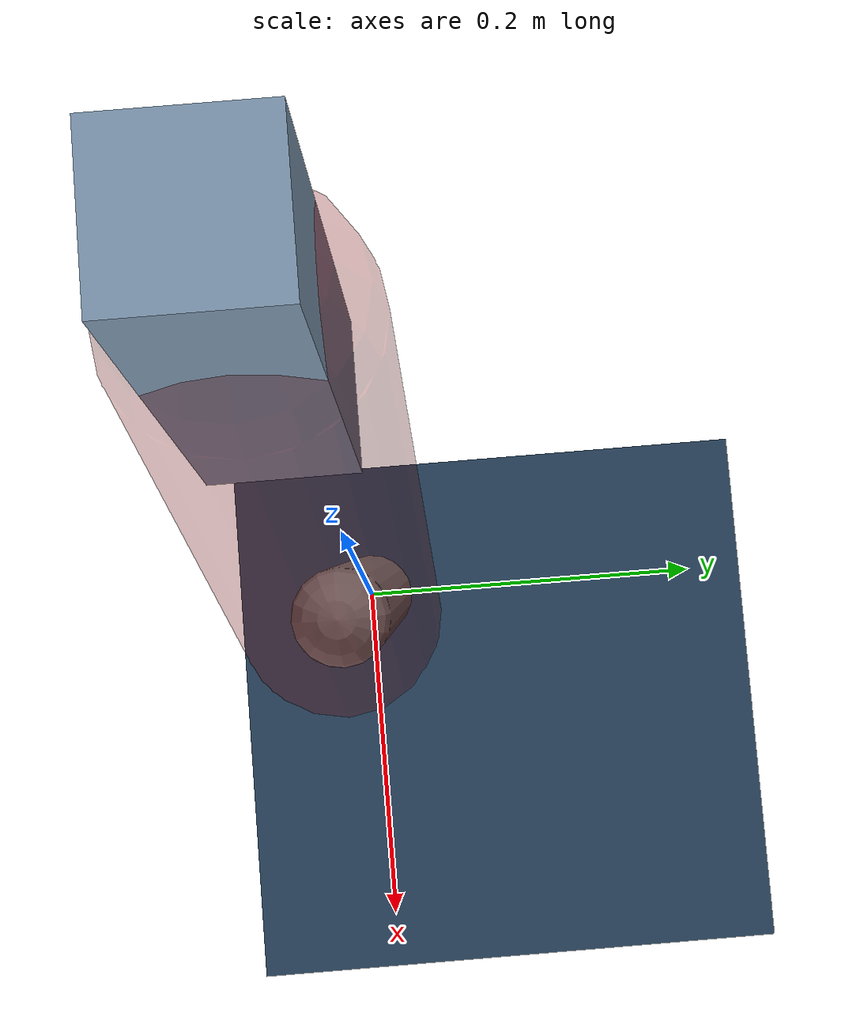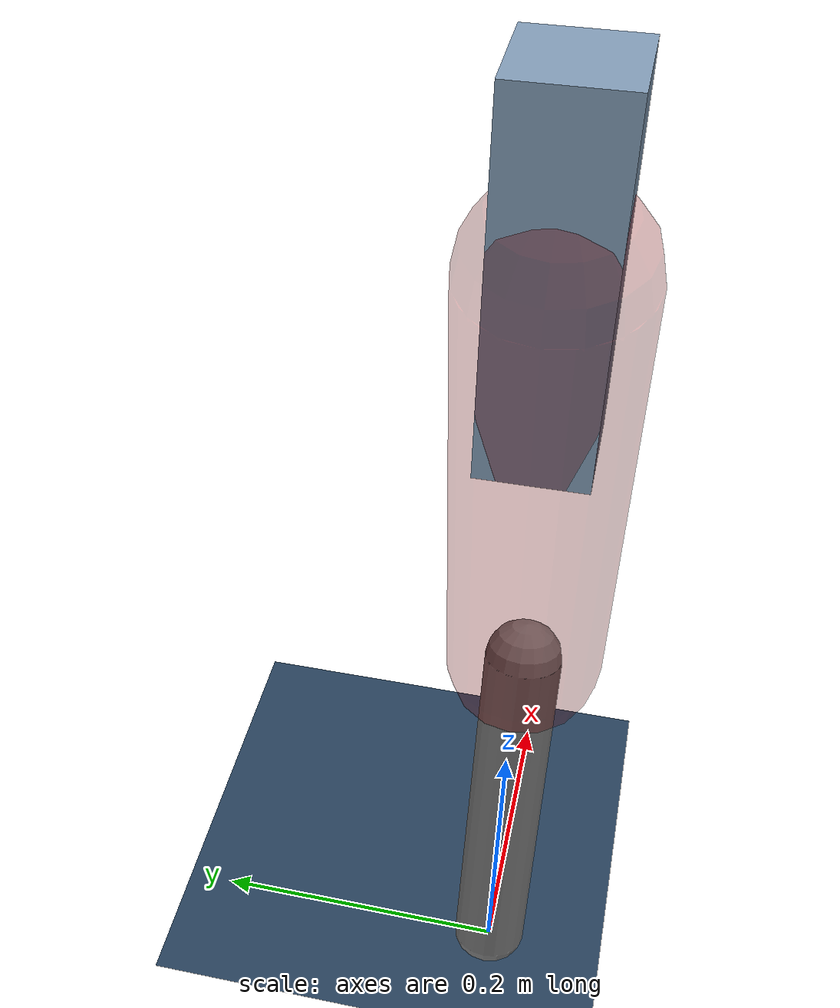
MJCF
<mujoco model="Hopper2D">
	<compiler inertiafromgeom="true" angle="radian" />
	<option timestep="0.001" integrator="implicit" cone="elliptic" solver="Newton" tolerance="1e-10" />

	<default>
		<geom contype="1" conaffinity="1" condim="3" friction="2 0.005 0.0001" solref="0.005 1" />
		<joint limited="true" damping="0.1" />
	</default>

	<asset>
		<texture name="skybox" type="skybox" builtin="gradient" rgb1=".4 .6 .8" rgb2="0 0 0" width="800" height="800" />
		<texture name="grid" type="2d" builtin="checker" rgb1=".1 .2 .3" rgb2=".2 .3 .4" width="300" height="300" mark="edge" markrgb=".2 .3 .4" />
		<material name="ground" texture="grid" texrepeat="1 1" texuniform="true" reflectance="0.1" />
		<material name="leg" rgba="0.5 0.6 0.7 1" />
	</asset>

	<worldbody>

		<geom name="floor" type="plane" size="5 5 0.25" material="ground" />

		<light directional="false" diffuse="0.8 0.8 0.8" specular="0.3 0.3 0.3" pos="0 0 2" dir="0 0 -1" />
		<light mode="targetbodycom" target="base" directional="false" diffuse="0.8 0.8 0.8" specular="0.3 0.3 0.3" pos="0 0 2" dir="0 0 -1" />

		<camera name="fixed" pos="0 -2 1" xyaxes="1 0 0 0 0 1" />
		<camera name="tracking" mode="trackcom" pos="0 -3 1" />

		<body name="root" pos="0 0 0.548579825496291">
			<joint name="slide_x" type="slide" axis="1 0 0" range="-100 100" />
			<joint name="slide_z" type="slide" axis="0 0 1" range="0 10" />

			<body name="base" pos="0 0 0">
				<geom name="torso" type="box" size="0.03 0.03 0.1" mass="2.121" material="leg" />

				<body name="link1" pos="0 0 0" euler="0 1.4013838143628372 0">
					<joint type="hinge" axis="0 -1 0" pos="0 0 0" name="hinge1" limited="true" range="-3.14 3.14" stiffness="0" damping="0.1" />
					<geom name="thigh" type="capsule" fromto="0 0 0 0.31006839682818194 0 0" size="0.05" rgba="0.5 0 0 0.3" mass="1.0160846714360912" />

					<body name="link2" pos="0.31006839682818194 0 0" euler="0 0.38136265818392345 0">
						<joint type="hinge" axis="0 -1 0" pos="0 0 0" name="hinge2" limited="true" range="-3.14 3.14" stiffness="0" damping="0.1" />
						<geom name="shank" type="capsule" fromto="0 0 0 0.2485114286681091 0 0" size="0.025" mass="0.44130914293448725" />

					</body>
				</body>
			</body>
		</body>
	</worldbody>

	<actuator>
		<motor name="torque1" joint="hinge1" ctrlrange="-72.5538555965881 72.5538555965881" ctrllimited="true" gear="1" />
		<motor name="torque2" joint="hinge2" ctrlrange="-79.43951061460928 79.43951061460928" ctrllimited="true" gear="1" />
	</actuator>
</mujoco>
